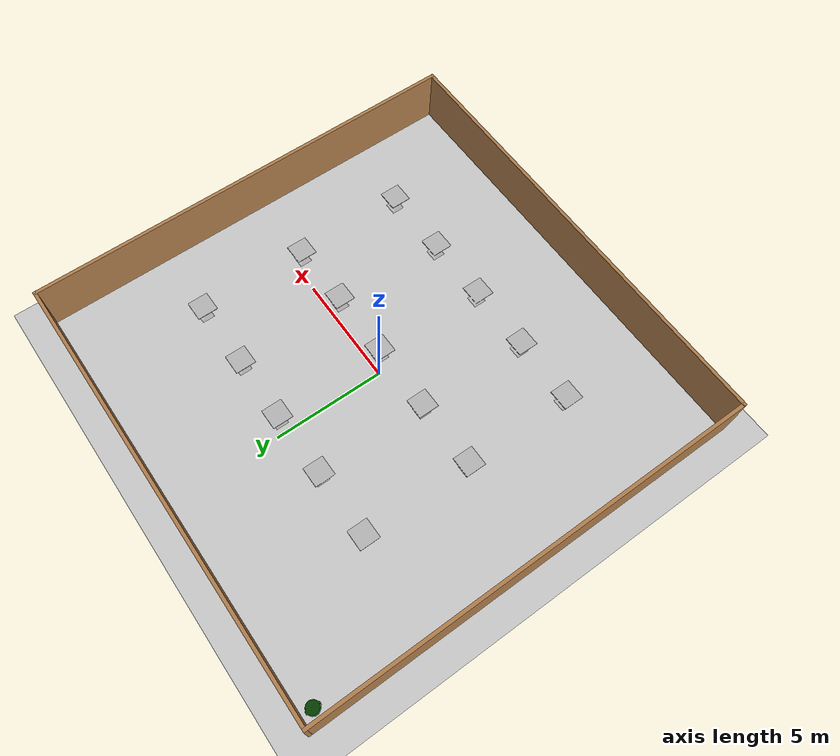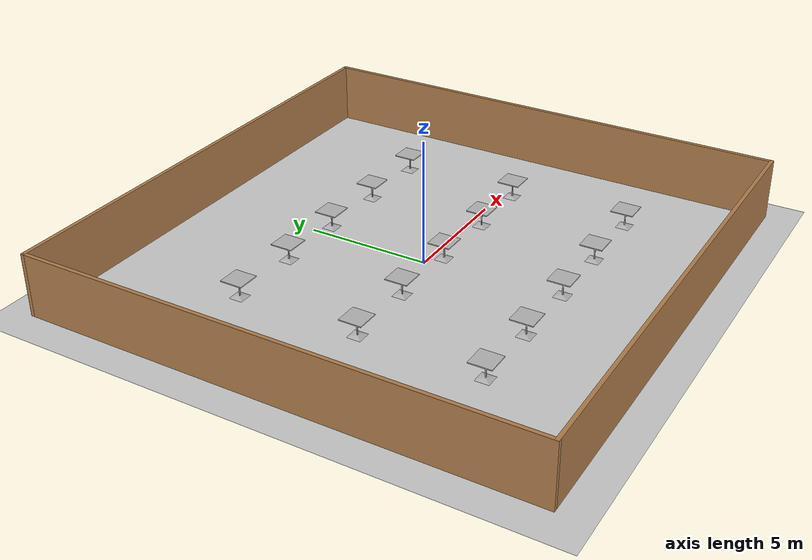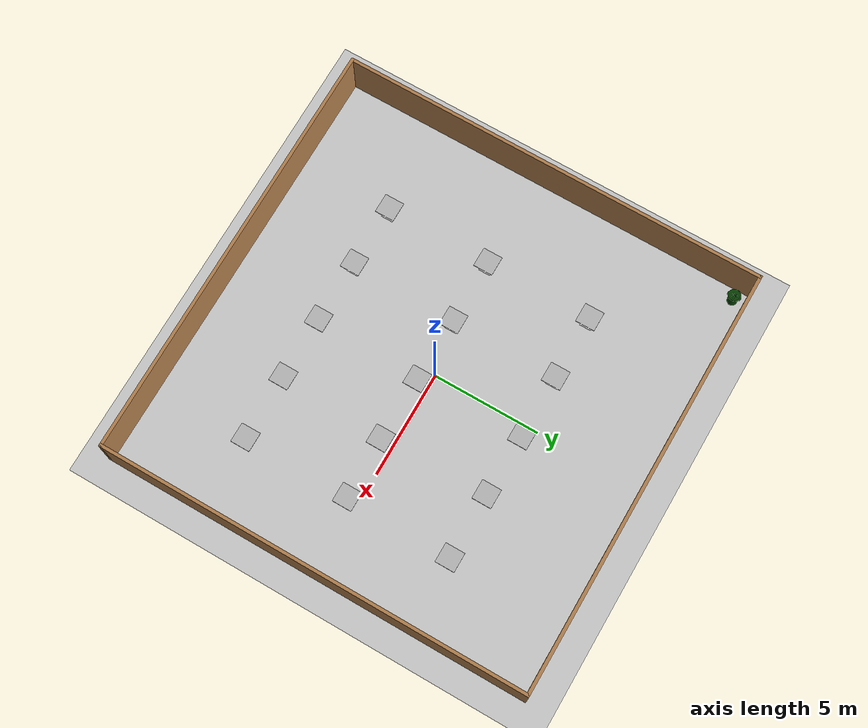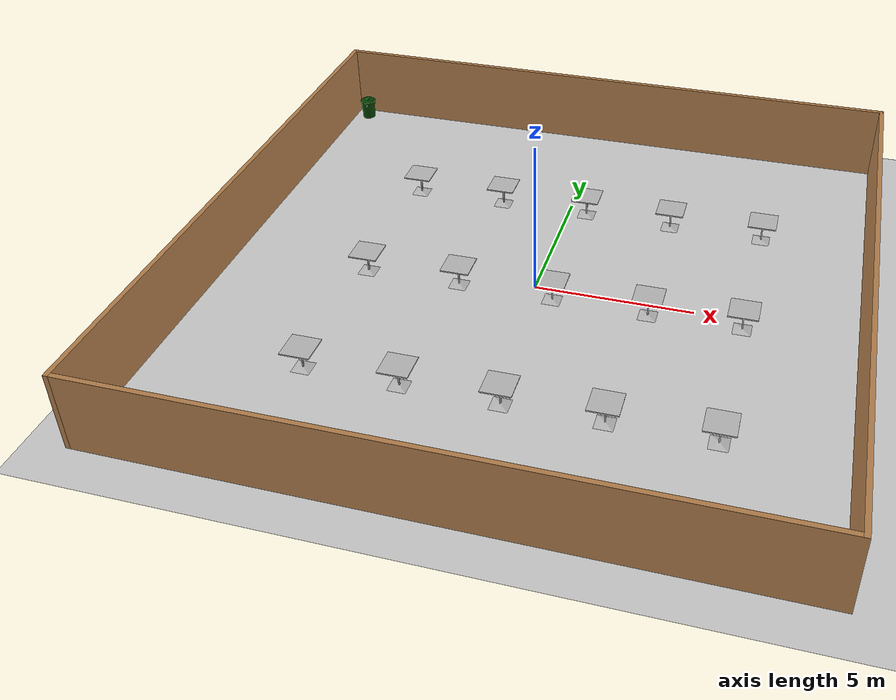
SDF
<sdf version="1.7">
 <world name="default">
  <scene><ambient>0.4 0.4 0.4 1</ambient><background>0.7 0.7 0.7 1</background><shadows>1</shadows></scene>
  <light name="sun" type="directional">
   <pose>0 0 10 0 -0 0</pose>
   <diffuse>0.8 0.8 0.8 1</diffuse>
   <specular>0.2 0.2 0.2 1</specular>
   <attenuation>
    <range>1000</range>
    <constant>0.9</constant>
    <linear>0.01</linear>
    <quadratic>0.001</quadratic>
   </attenuation>
   <direction>-0.5 0.1 -0.9</direction>
   <spot><inner_angle>0</inner_angle><outer_angle>0</outer_angle><falloff>0</falloff></spot>
  </light>
  <model name="ground_plane">
   <static>1</static>
   <link name="link">
    <collision name="collision">
     <geometry><plane><normal>0 0 1</normal><size>100 100</size></plane></geometry>
     <surface>
      <contact><collide_bitmask>65535</collide_bitmask></contact>
      <friction><ode><mu>100</mu><mu2>50</mu2></ode></friction>
     </surface>
    </collision>
    <visual name="visual">
     <cast_shadows>0</cast_shadows>
     <geometry><plane><normal>0 0 1</normal><size>100 100</size></plane></geometry>
     <material>
      <script><uri>file://media/materials/scripts/gazebo.material</uri><name>Gazebo/Grey</name></script>
     </material>
    </visual>
   </link>
  </model>
  <physics type="ode">
   <real_time_update_rate>1000</real_time_update_rate>
   <max_step_size>0.001</max_step_size>
   <real_time_factor>1</real_time_factor>
   <ode>
    <solver>
     <type>quick</type>
     <iters>150</iters>
     <precon_iters>0</precon_iters>
     <sor>1.4</sor>
     <use_dynamic_moi_rescaling>1</use_dynamic_moi_rescaling>
    </solver>
    <constraints>
     <cfm>1e-05</cfm>
     <erp>0.2</erp>
     <contact_max_correcting_vel>2000</contact_max_correcting_vel>
     <contact_surface_layer>0.01</contact_surface_layer>
    </constraints>
   </ode>
  </physics>
  <gravity>0 0 -9.8</gravity>
  <magnetic_field>6e-06 2.3e-05 -4.2e-05</magnetic_field>
  <atmosphere type="adiabatic"/>
  <spherical_coordinates>
   <surface_model>EARTH_WGS84</surface_model>
   <latitude_deg>0</latitude_deg>
   <longitude_deg>0</longitude_deg>
   <elevation>0</elevation>
   <heading_deg>0</heading_deg>
  </spherical_coordinates>
  <model name="20x20">
   <link name="Wall_0">
    <collision name="Wall_0_Collision">
     <geometry><box><size>20.15 0.15 2.5</size></box></geometry>
     <pose>0 0 1.25 0 -0 0</pose>
    </collision>
    <visual name="Wall_0_Visual">
     <pose>0 0 1.25 0 -0 0</pose>
     <geometry><box><size>20.15 0.15 2.5</size></box></geometry>
     <material>
      <script><uri>file://media/materials/scripts/gazebo.material</uri><name>Gazebo/Wood</name></script>
      <ambient>0.996078 0.47451 0.0196078 1</ambient>
     </material>
     <meta><layer>0</layer></meta>
    </visual>
    <pose>10 0 0 0 -0 -1.5708</pose>
   </link>
   <link name="Wall_2">
    <collision name="Wall_2_Collision">
     <geometry><box><size>20.15 0.15 2.5</size></box></geometry>
     <pose>0 0 1.25 0 -0 0</pose>
    </collision>
    <visual name="Wall_2_Visual">
     <pose>0 0 1.25 0 -0 0</pose>
     <geometry><box><size>20.15 0.15 2.5</size></box></geometry>
     <material>
      <script><uri>file://media/materials/scripts/gazebo.material</uri><name>Gazebo/Wood</name></script>
      <ambient>0.996078 0.47451 0.0196078 1</ambient>
     </material>
     <meta><layer>0</layer></meta>
    </visual>
    <pose>0 10 0 0 -0 3.14159</pose>
   </link>
   <link name="Wall_4">
    <collision name="Wall_4_Collision">
     <geometry><box><size>20.15 0.15 2.5</size></box></geometry>
     <pose>0 0 1.25 0 -0 0</pose>
    </collision>
    <visual name="Wall_4_Visual">
     <pose>0 0 1.25 0 -0 0</pose>
     <geometry><box><size>20.15 0.15 2.5</size></box></geometry>
     <material>
      <script><uri>file://media/materials/scripts/gazebo.material</uri><name>Gazebo/Wood</name></script>
      <ambient>0.996078 0.47451 0.0196078 1</ambient>
     </material>
     <meta><layer>0</layer></meta>
    </visual>
    <pose>0 -10 0 0 -0 3.14159</pose>
   </link>
   <link name="Wall_6">
    <collision name="Wall_6_Collision">
     <geometry><box><size>20.15 0.15 2.5</size></box></geometry>
     <pose>0 0 1.25 0 -0 0</pose>
    </collision>
    <visual name="Wall_6_Visual">
     <pose>0 0 1.25 0 -0 0</pose>
     <geometry><box><size>20.15 0.15 2.5</size></box></geometry>
     <material>
      <script><uri>file://media/materials/scripts/gazebo.material</uri><name>Gazebo/Wood</name></script>
      <ambient>0.996078 0.47451 0.0196078 1</ambient>
     </material>
     <meta><layer>0</layer></meta>
    </visual>
    <pose>-10 0 0 0 -0 -1.5708</pose>
   </link>
   <static>1</static>
  </model>
  <model name="cafe_table">
   <static>1</static>
   <link name="link">
    <collision name="surface">
     <pose>0 0 0.755 0 -0 0</pose>
     <geometry><box><size>0.913 0.913 0.04</size></box></geometry>
    </collision>
    <collision name="column">
     <pose>0 0 0.37 0 -0 0</pose>
     <geometry><box><size>0.042 0.042 0.74</size></box></geometry>
    </collision>
    <collision name="base">
     <pose>0 0 0.02 0 -0 0</pose>
     <geometry><box><size>0.56 0.56 0.04</size></box></geometry>
    </collision>
    <visual name="visual">
     <geometry><mesh><uri>model://cafe_table/meshes/cafe_table.dae</uri></mesh></geometry>
    </visual>
   </link>
   <pose>-2.48172 -5.49005 0 0 -0 0</pose>
  </model>
  <model name="cafe_table_0">
   <static>1</static>
   <link name="link">
    <collision name="surface">
     <pose>0 0 0.755 0 -0 0</pose>
     <geometry><box><size>0.913 0.913 0.04</size></box></geometry>
    </collision>
    <collision name="column">
     <pose>0 0 0.37 0 -0 0</pose>
     <geometry><box><size>0.042 0.042 0.74</size></box></geometry>
    </collision>
    <collision name="base">
     <pose>0 0 0.02 0 -0 0</pose>
     <geometry><box><size>0.56 0.56 0.04</size></box></geometry>
    </collision>
    <visual name="visual">
     <geometry><mesh><uri>model://cafe_table/meshes/cafe_table.dae</uri></mesh></geometry>
    </visual>
   </link>
   <pose>0.479193 -5.50319 0 0 -0 0</pose>
  </model>
  <model name="cafe_table_1">
   <static>1</static>
   <link name="link">
    <collision name="surface">
     <pose>0 0 0.755 0 -0 0</pose>
     <geometry><box><size>0.913 0.913 0.04</size></box></geometry>
    </collision>
    <collision name="column">
     <pose>0 0 0.37 0 -0 0</pose>
     <geometry><box><size>0.042 0.042 0.74</size></box></geometry>
    </collision>
    <collision name="base">
     <pose>0 0 0.02 0 -0 0</pose>
     <geometry><box><size>0.56 0.56 0.04</size></box></geometry>
    </collision>
    <visual name="visual">
     <geometry><mesh><uri>model://cafe_table/meshes/cafe_table.dae</uri></mesh></geometry>
    </visual>
   </link>
   <pose>3.41336 -5.47256 0 0 -0 0</pose>
  </model>
  <model name="cafe_table_2">
   <static>1</static>
   <link name="link">
    <collision name="surface">
     <pose>0 0 0.755 0 -0 0</pose>
     <geometry><box><size>0.913 0.913 0.04</size></box></geometry>
    </collision>
    <collision name="column">
     <pose>0 0 0.37 0 -0 0</pose>
     <geometry><box><size>0.042 0.042 0.74</size></box></geometry>
    </collision>
    <collision name="base">
     <pose>0 0 0.02 0 -0 0</pose>
     <geometry><box><size>0.56 0.56 0.04</size></box></geometry>
    </collision>
    <visual name="visual">
     <geometry><mesh><uri>model://cafe_table/meshes/cafe_table.dae</uri></mesh></geometry>
    </visual>
   </link>
   <pose>6.48943 -5.44668 0 0 -0 0</pose>
  </model>
  <model name="first_2015_trash_can">
   <link name="link">
    <inertial>
     <pose>0 0 0.3683 0 -0 0</pose>
     <mass>4.83076</mass>
     <inertia>
      <ixx>0.281534</ixx>
      <ixy>0</ixy>
      <ixz>0</ixz>
      <iyy>0.281534</iyy>
      <iyz>0</iyz>
      <izz>0.126223</izz>
     </inertia>
    </inertial>
    <visual name="visual">
     <geometry><mesh><uri>model://first_2015_trash_can/meshes/trash_can.dae</uri></mesh></geometry>
    </visual>
    <collision name="collision">
     <geometry><mesh><uri>model://first_2015_trash_can/meshes/trash_can.dae</uri></mesh></geometry>
    </collision>
   </link>
   <pose>-9.4146 9.42834 -3e-06 -1.1e-05 2e-06 -0.000402</pose>
  </model>
  <model name="cafe_table_3">
   <static>1</static>
   <link name="link">
    <collision name="surface">
     <pose>0 0 0.755 0 -0 0</pose>
     <geometry><box><size>0.913 0.913 0.04</size></box></geometry>
    </collision>
    <collision name="column">
     <pose>0 0 0.37 0 -0 0</pose>
     <geometry><box><size>0.042 0.042 0.74</size></box></geometry>
    </collision>
    <collision name="base">
     <pose>0 0 0.02 0 -0 0</pose>
     <geometry><box><size>0.56 0.56 0.04</size></box></geometry>
    </collision>
    <visual name="visual">
     <geometry><mesh><uri>model://cafe_table/meshes/cafe_table.dae</uri></mesh></geometry>
    </visual>
   </link>
   <pose>-5.41695 -5.46275 0 0 -0 0</pose>
  </model>
  <model name="cafe_table_4">
   <static>1</static>
   <link name="link">
    <collision name="surface">
     <pose>0 0 0.755 0 -0 0</pose>
     <geometry><box><size>0.913 0.913 0.04</size></box></geometry>
    </collision>
    <collision name="column">
     <pose>0 0 0.37 0 -0 0</pose>
     <geometry><box><size>0.042 0.042 0.74</size></box></geometry>
    </collision>
    <collision name="base">
     <pose>0 0 0.02 0 -0 0</pose>
     <geometry><box><size>0.56 0.56 0.04</size></box></geometry>
    </collision>
    <visual name="visual">
     <geometry><mesh><uri>model://cafe_table/meshes/cafe_table.dae</uri></mesh></geometry>
    </visual>
   </link>
   <pose>-5.40305 -0.510576 0 0 -0 0</pose>
  </model>
  <model name="cafe_table_5">
   <static>1</static>
   <link name="link">
    <collision name="surface">
     <pose>0 0 0.755 0 -0 0</pose>
     <geometry><box><size>0.913 0.913 0.04</size></box></geometry>
    </collision>
    <collision name="column">
     <pose>0 0 0.37 0 -0 0</pose>
     <geometry><box><size>0.042 0.042 0.74</size></box></geometry>
    </collision>
    <collision name="base">
     <pose>0 0 0.02 0 -0 0</pose>
     <geometry><box><size>0.56 0.56 0.04</size></box></geometry>
    </collision>
    <visual name="visual">
     <geometry><mesh><uri>model://cafe_table/meshes/cafe_table.dae</uri></mesh></geometry>
    </visual>
   </link>
   <pose>-5.40583 4.51165 0 0 -0 0</pose>
  </model>
  <model name="cafe_table_6">
   <static>1</static>
   <link name="link">
    <collision name="surface">
     <pose>0 0 0.755 0 -0 0</pose>
     <geometry><box><size>0.913 0.913 0.04</size></box></geometry>
    </collision>
    <collision name="column">
     <pose>0 0 0.37 0 -0 0</pose>
     <geometry><box><size>0.042 0.042 0.74</size></box></geometry>
    </collision>
    <collision name="base">
     <pose>0 0 0.02 0 -0 0</pose>
     <geometry><box><size>0.56 0.56 0.04</size></box></geometry>
    </collision>
    <visual name="visual">
     <geometry><mesh><uri>model://cafe_table/meshes/cafe_table.dae</uri></mesh></geometry>
    </visual>
   </link>
   <pose>-2.3679 -0.474744 0 0 -0 0</pose>
  </model>
  <model name="cafe_table_7">
   <static>1</static>
   <link name="link">
    <collision name="surface">
     <pose>0 0 0.755 0 -0 0</pose>
     <geometry><box><size>0.913 0.913 0.04</size></box></geometry>
    </collision>
    <collision name="column">
     <pose>0 0 0.37 0 -0 0</pose>
     <geometry><box><size>0.042 0.042 0.74</size></box></geometry>
    </collision>
    <collision name="base">
     <pose>0 0 0.02 0 -0 0</pose>
     <geometry><box><size>0.56 0.56 0.04</size></box></geometry>
    </collision>
    <visual name="visual">
     <geometry><mesh><uri>model://cafe_table/meshes/cafe_table.dae</uri></mesh></geometry>
    </visual>
   </link>
   <pose>-2.37119 4.51795 0 0 -0 0</pose>
  </model>
  <model name="cafe_table_8">
   <static>1</static>
   <link name="link">
    <collision name="surface">
     <pose>0 0 0.755 0 -0 0</pose>
     <geometry><box><size>0.913 0.913 0.04</size></box></geometry>
    </collision>
    <collision name="column">
     <pose>0 0 0.37 0 -0 0</pose>
     <geometry><box><size>0.042 0.042 0.74</size></box></geometry>
    </collision>
    <collision name="base">
     <pose>0 0 0.02 0 -0 0</pose>
     <geometry><box><size>0.56 0.56 0.04</size></box></geometry>
    </collision>
    <visual name="visual">
     <geometry><mesh><uri>model://cafe_table/meshes/cafe_table.dae</uri></mesh></geometry>
    </visual>
   </link>
   <pose>0.666209 -0.497979 0 0 -0 0</pose>
  </model>
  <model name="cafe_table_9">
   <static>1</static>
   <link name="link">
    <collision name="surface">
     <pose>0 0 0.755 0 -0 0</pose>
     <geometry><box><size>0.913 0.913 0.04</size></box></geometry>
    </collision>
    <collision name="column">
     <pose>0 0 0.37 0 -0 0</pose>
     <geometry><box><size>0.042 0.042 0.74</size></box></geometry>
    </collision>
    <collision name="base">
     <pose>0 0 0.02 0 -0 0</pose>
     <geometry><box><size>0.56 0.56 0.04</size></box></geometry>
    </collision>
    <visual name="visual">
     <geometry><mesh><uri>model://cafe_table/meshes/cafe_table.dae</uri></mesh></geometry>
    </visual>
   </link>
   <pose>0.603879 4.55482 0 0 -0 0</pose>
  </model>
  <model name="cafe_table_10">
   <static>1</static>
   <link name="link">
    <collision name="surface">
     <pose>0 0 0.755 0 -0 0</pose>
     <geometry><box><size>0.913 0.913 0.04</size></box></geometry>
    </collision>
    <collision name="column">
     <pose>0 0 0.37 0 -0 0</pose>
     <geometry><box><size>0.042 0.042 0.74</size></box></geometry>
    </collision>
    <collision name="base">
     <pose>0 0 0.02 0 -0 0</pose>
     <geometry><box><size>0.56 0.56 0.04</size></box></geometry>
    </collision>
    <visual name="visual">
     <geometry><mesh><uri>model://cafe_table/meshes/cafe_table.dae</uri></mesh></geometry>
    </visual>
   </link>
   <pose>3.6703 -0.520691 0 0 -0 0</pose>
  </model>
  <model name="cafe_table_11">
   <static>1</static>
   <link name="link">
    <collision name="surface">
     <pose>0 0 0.755 0 -0 0</pose>
     <geometry><box><size>0.913 0.913 0.04</size></box></geometry>
    </collision>
    <collision name="column">
     <pose>0 0 0.37 0 -0 0</pose>
     <geometry><box><size>0.042 0.042 0.74</size></box></geometry>
    </collision>
    <collision name="base">
     <pose>0 0 0.02 0 -0 0</pose>
     <geometry><box><size>0.56 0.56 0.04</size></box></geometry>
    </collision>
    <visual name="visual">
     <geometry><mesh><uri>model://cafe_table/meshes/cafe_table.dae</uri></mesh></geometry>
    </visual>
   </link>
   <pose>6.52574 -0.45219 0 0 -0 0</pose>
  </model>
  <model name="cafe_table_12">
   <static>1</static>
   <link name="link">
    <collision name="surface">
     <pose>0 0 0.755 0 -0 0</pose>
     <geometry><box><size>0.913 0.913 0.04</size></box></geometry>
    </collision>
    <collision name="column">
     <pose>0 0 0.37 0 -0 0</pose>
     <geometry><box><size>0.042 0.042 0.74</size></box></geometry>
    </collision>
    <collision name="base">
     <pose>0 0 0.02 0 -0 0</pose>
     <geometry><box><size>0.56 0.56 0.04</size></box></geometry>
    </collision>
    <visual name="visual">
     <geometry><mesh><uri>model://cafe_table/meshes/cafe_table.dae</uri></mesh></geometry>
    </visual>
   </link>
   <pose>3.51734 4.50415 0 0 -0 0</pose>
  </model>
  <model name="cafe_table_13">
   <static>1</static>
   <link name="link">
    <collision name="surface">
     <pose>0 0 0.755 0 -0 0</pose>
     <geometry><box><size>0.913 0.913 0.04</size></box></geometry>
    </collision>
    <collision name="column">
     <pose>0 0 0.37 0 -0 0</pose>
     <geometry><box><size>0.042 0.042 0.74</size></box></geometry>
    </collision>
    <collision name="base">
     <pose>0 0 0.02 0 -0 0</pose>
     <geometry><box><size>0.56 0.56 0.04</size></box></geometry>
    </collision>
    <visual name="visual">
     <geometry><mesh><uri>model://cafe_table/meshes/cafe_table.dae</uri></mesh></geometry>
    </visual>
   </link>
   <pose>6.582 4.50992 0 0 -0 0</pose>
  </model>
 </world>
</sdf>
